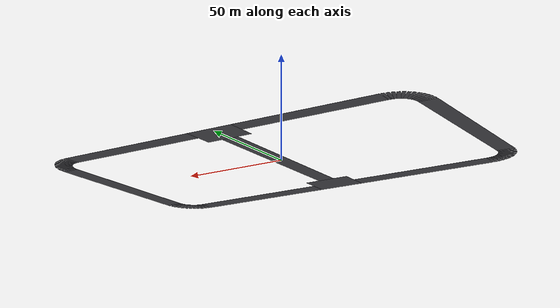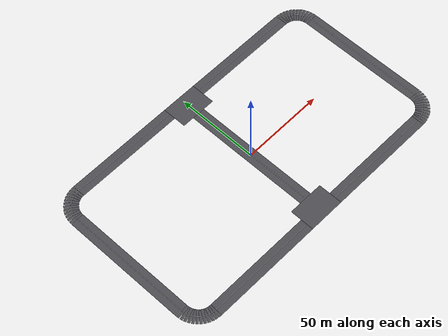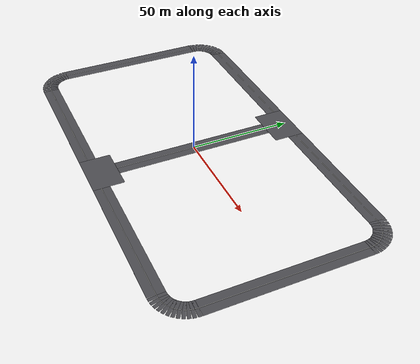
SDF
<?xml version="1.0" ?>
<sdf version="1.9">
  <model name="campus_road">
    <static>true</static>
    <link name="link">
      <visual name="surface_0">
        <pose>44.500000 -50.000000 0.005000 0 0 0.000000</pose>
        <geometry><box><size>67.000000 8.000000 0.010000</size></box></geometry>
        <material><ambient>0.22 0.22 0.24 1</ambient><diffuse>0.28 0.28 0.30 1</diffuse></material>
      </visual>
      <visual name="centerline_0">
        <pose>44.500000 -50.000000 0.006000 0 0 0.000000</pose>
        <geometry><box><size>67.000000 0.150000 0.010000</size></box></geometry>
        <material><ambient>0.85 0.85 0.80 1</ambient><diffuse>0.95 0.95 0.90 1</diffuse></material>
      </visual>
      <visual name="surface_1">
        <pose>78.783157 -49.948669 0.005000 0 0 0.065450</pose>
        <geometry><box><size>1.569675 8.000000 0.010000</size></box></geometry>
        <material><ambient>0.22 0.22 0.24 1</ambient><diffuse>0.28 0.28 0.30 1</diffuse></material>
      </visual>
      <visual name="centerline_1">
        <pose>78.783157 -49.948669 0.006000 0 0 0.065450</pose>
        <geometry><box><size>1.569675 0.150000 0.010000</size></box></geometry>
        <material><ambient>0.85 0.85 0.80 1</ambient><diffuse>0.95 0.95 0.90 1</diffuse></material>
      </visual>
      <visual name="surface_2">
        <pose>80.336071 -49.744224 0.005000 0 0 0.196350</pose>
        <geometry><box><size>1.569675 8.000000 0.010000</size></box></geometry>
        <material><ambient>0.22 0.22 0.24 1</ambient><diffuse>0.28 0.28 0.30 1</diffuse></material>
      </visual>
      <visual name="centerline_2">
        <pose>80.336071 -49.744224 0.006000 0 0 0.196350</pose>
        <geometry><box><size>1.569675 0.150000 0.010000</size></box></geometry>
        <material><ambient>0.85 0.85 0.80 1</ambient><diffuse>0.95 0.95 0.90 1</diffuse></material>
      </visual>
      <visual name="surface_3">
        <pose>81.849015 -49.338832 0.005000 0 0 0.327249</pose>
        <geometry><box><size>1.569675 8.000000 0.010000</size></box></geometry>
        <material><ambient>0.22 0.22 0.24 1</ambient><diffuse>0.28 0.28 0.30 1</diffuse></material>
      </visual>
      <visual name="centerline_3">
        <pose>81.849015 -49.338832 0.006000 0 0 0.327249</pose>
        <geometry><box><size>1.569675 0.150000 0.010000</size></box></geometry>
        <material><ambient>0.85 0.85 0.80 1</ambient><diffuse>0.95 0.95 0.90 1</diffuse></material>
      </visual>
      <visual name="surface_4">
        <pose>83.296101 -48.739430 0.005000 0 0 0.458149</pose>
        <geometry><box><size>1.569675 8.000000 0.010000</size></box></geometry>
        <material><ambient>0.22 0.22 0.24 1</ambient><diffuse>0.28 0.28 0.30 1</diffuse></material>
      </visual>
      <visual name="centerline_4">
        <pose>83.296101 -48.739430 0.006000 0 0 0.458149</pose>
        <geometry><box><size>1.569675 0.150000 0.010000</size></box></geometry>
        <material><ambient>0.85 0.85 0.80 1</ambient><diffuse>0.95 0.95 0.90 1</diffuse></material>
      </visual>
      <visual name="surface_5">
        <pose>84.652569 -47.956272 0.005000 0 0 0.589049</pose>
        <geometry><box><size>1.569675 8.000000 0.010000</size></box></geometry>
        <material><ambient>0.22 0.22 0.24 1</ambient><diffuse>0.28 0.28 0.30 1</diffuse></material>
      </visual>
      <visual name="centerline_5">
        <pose>84.652569 -47.956272 0.006000 0 0 0.589049</pose>
        <geometry><box><size>1.569675 0.150000 0.010000</size></box></geometry>
        <material><ambient>0.85 0.85 0.80 1</ambient><diffuse>0.95 0.95 0.90 1</diffuse></material>
      </visual>
      <visual name="surface_6">
        <pose>85.895209 -47.002761 0.005000 0 0 0.719948</pose>
        <geometry><box><size>1.569675 8.000000 0.010000</size></box></geometry>
        <material><ambient>0.22 0.22 0.24 1</ambient><diffuse>0.28 0.28 0.30 1</diffuse></material>
      </visual>
      <visual name="centerline_6">
        <pose>85.895209 -47.002761 0.006000 0 0 0.719948</pose>
        <geometry><box><size>1.569675 0.150000 0.010000</size></box></geometry>
        <material><ambient>0.85 0.85 0.80 1</ambient><diffuse>0.95 0.95 0.90 1</diffuse></material>
      </visual>
      <visual name="surface_7">
        <pose>87.002761 -45.895209 0.005000 0 0 0.850848</pose>
        <geometry><box><size>1.569675 8.000000 0.010000</size></box></geometry>
        <material><ambient>0.22 0.22 0.24 1</ambient><diffuse>0.28 0.28 0.30 1</diffuse></material>
      </visual>
      <visual name="centerline_7">
        <pose>87.002761 -45.895209 0.006000 0 0 0.850848</pose>
        <geometry><box><size>1.569675 0.150000 0.010000</size></box></geometry>
        <material><ambient>0.85 0.85 0.80 1</ambient><diffuse>0.95 0.95 0.90 1</diffuse></material>
      </visual>
      <visual name="surface_8">
        <pose>87.956272 -44.652569 0.005000 0 0 0.981748</pose>
        <geometry><box><size>1.569675 8.000000 0.010000</size></box></geometry>
        <material><ambient>0.22 0.22 0.24 1</ambient><diffuse>0.28 0.28 0.30 1</diffuse></material>
      </visual>
      <visual name="centerline_8">
        <pose>87.956272 -44.652569 0.006000 0 0 0.981748</pose>
        <geometry><box><size>1.569675 0.150000 0.010000</size></box></geometry>
        <material><ambient>0.85 0.85 0.80 1</ambient><diffuse>0.95 0.95 0.90 1</diffuse></material>
      </visual>
      <visual name="surface_9">
        <pose>88.739430 -43.296101 0.005000 0 0 1.112647</pose>
        <geometry><box><size>1.569675 8.000000 0.010000</size></box></geometry>
        <material><ambient>0.22 0.22 0.24 1</ambient><diffuse>0.28 0.28 0.30 1</diffuse></material>
      </visual>
      <visual name="centerline_9">
        <pose>88.739430 -43.296101 0.006000 0 0 1.112647</pose>
        <geometry><box><size>1.569675 0.150000 0.010000</size></box></geometry>
        <material><ambient>0.85 0.85 0.80 1</ambient><diffuse>0.95 0.95 0.90 1</diffuse></material>
      </visual>
      <visual name="surface_10">
        <pose>89.338832 -41.849015 0.005000 0 0 1.243547</pose>
        <geometry><box><size>1.569675 8.000000 0.010000</size></box></geometry>
        <material><ambient>0.22 0.22 0.24 1</ambient><diffuse>0.28 0.28 0.30 1</diffuse></material>
      </visual>
      <visual name="centerline_10">
        <pose>89.338832 -41.849015 0.006000 0 0 1.243547</pose>
        <geometry><box><size>1.569675 0.150000 0.010000</size></box></geometry>
        <material><ambient>0.85 0.85 0.80 1</ambient><diffuse>0.95 0.95 0.90 1</diffuse></material>
      </visual>
      <visual name="surface_11">
        <pose>89.744224 -40.336071 0.005000 0 0 1.374447</pose>
        <geometry><box><size>1.569675 8.000000 0.010000</size></box></geometry>
        <material><ambient>0.22 0.22 0.24 1</ambient><diffuse>0.28 0.28 0.30 1</diffuse></material>
      </visual>
      <visual name="centerline_11">
        <pose>89.744224 -40.336071 0.006000 0 0 1.374447</pose>
        <geometry><box><size>1.569675 0.150000 0.010000</size></box></geometry>
        <material><ambient>0.85 0.85 0.80 1</ambient><diffuse>0.95 0.95 0.90 1</diffuse></material>
      </visual>
      <visual name="surface_12">
        <pose>89.948669 -38.783157 0.005000 0 0 1.505346</pose>
        <geometry><box><size>1.569675 8.000000 0.010000</size></box></geometry>
        <material><ambient>0.22 0.22 0.24 1</ambient><diffuse>0.28 0.28 0.30 1</diffuse></material>
      </visual>
      <visual name="centerline_12">
        <pose>89.948669 -38.783157 0.006000 0 0 1.505346</pose>
        <geometry><box><size>1.569675 0.150000 0.010000</size></box></geometry>
        <material><ambient>0.85 0.85 0.80 1</ambient><diffuse>0.95 0.95 0.90 1</diffuse></material>
      </visual>
      <visual name="surface_13">
        <pose>90.000000 0.000000 0.005000 0 0 1.570796</pose>
        <geometry><box><size>76.000000 8.000000 0.010000</size></box></geometry>
        <material><ambient>0.22 0.22 0.24 1</ambient><diffuse>0.28 0.28 0.30 1</diffuse></material>
      </visual>
      <visual name="centerline_13">
        <pose>90.000000 0.000000 0.006000 0 0 1.570796</pose>
        <geometry><box><size>76.000000 0.150000 0.010000</size></box></geometry>
        <material><ambient>0.85 0.85 0.80 1</ambient><diffuse>0.95 0.95 0.90 1</diffuse></material>
      </visual>
      <visual name="surface_14">
        <pose>89.948669 38.783157 0.005000 0 0 1.636246</pose>
        <geometry><box><size>1.569675 8.000000 0.010000</size></box></geometry>
        <material><ambient>0.22 0.22 0.24 1</ambient><diffuse>0.28 0.28 0.30 1</diffuse></material>
      </visual>
      <visual name="centerline_14">
        <pose>89.948669 38.783157 0.006000 0 0 1.636246</pose>
        <geometry><box><size>1.569675 0.150000 0.010000</size></box></geometry>
        <material><ambient>0.85 0.85 0.80 1</ambient><diffuse>0.95 0.95 0.90 1</diffuse></material>
      </visual>
      <visual name="surface_15">
        <pose>89.744224 40.336071 0.005000 0 0 1.767146</pose>
        <geometry><box><size>1.569675 8.000000 0.010000</size></box></geometry>
        <material><ambient>0.22 0.22 0.24 1</ambient><diffuse>0.28 0.28 0.30 1</diffuse></material>
      </visual>
      <visual name="centerline_15">
        <pose>89.744224 40.336071 0.006000 0 0 1.767146</pose>
        <geometry><box><size>1.569675 0.150000 0.010000</size></box></geometry>
        <material><ambient>0.85 0.85 0.80 1</ambient><diffuse>0.95 0.95 0.90 1</diffuse></material>
      </visual>
      <visual name="surface_16">
        <pose>89.338832 41.849015 0.005000 0 0 1.898046</pose>
        <geometry><box><size>1.569675 8.000000 0.010000</size></box></geometry>
        <material><ambient>0.22 0.22 0.24 1</ambient><diffuse>0.28 0.28 0.30 1</diffuse></material>
      </visual>
      <visual name="centerline_16">
        <pose>89.338832 41.849015 0.006000 0 0 1.898046</pose>
        <geometry><box><size>1.569675 0.150000 0.010000</size></box></geometry>
        <material><ambient>0.85 0.85 0.80 1</ambient><diffuse>0.95 0.95 0.90 1</diffuse></material>
      </visual>
      <visual name="surface_17">
        <pose>88.739430 43.296101 0.005000 0 0 2.028945</pose>
        <geometry><box><size>1.569675 8.000000 0.010000</size></box></geometry>
        <material><ambient>0.22 0.22 0.24 1</ambient><diffuse>0.28 0.28 0.30 1</diffuse></material>
      </visual>
      <visual name="centerline_17">
        <pose>88.739430 43.296101 0.006000 0 0 2.028945</pose>
        <geometry><box><size>1.569675 0.150000 0.010000</size></box></geometry>
        <material><ambient>0.85 0.85 0.80 1</ambient><diffuse>0.95 0.95 0.90 1</diffuse></material>
      </visual>
      <visual name="surface_18">
        <pose>87.956272 44.652569 0.005000 0 0 2.159845</pose>
        <geometry><box><size>1.569675 8.000000 0.010000</size></box></geometry>
        <material><ambient>0.22 0.22 0.24 1</ambient><diffuse>0.28 0.28 0.30 1</diffuse></material>
      </visual>
      <visual name="centerline_18">
        <pose>87.956272 44.652569 0.006000 0 0 2.159845</pose>
        <geometry><box><size>1.569675 0.150000 0.010000</size></box></geometry>
        <material><ambient>0.85 0.85 0.80 1</ambient><diffuse>0.95 0.95 0.90 1</diffuse></material>
      </visual>
      <visual name="surface_19">
        <pose>87.002761 45.895209 0.005000 0 0 2.290745</pose>
        <geometry><box><size>1.569675 8.000000 0.010000</size></box></geometry>
        <material><ambient>0.22 0.22 0.24 1</ambient><diffuse>0.28 0.28 0.30 1</diffuse></material>
      </visual>
      <visual name="centerline_19">
        <pose>87.002761 45.895209 0.006000 0 0 2.290745</pose>
        <geometry><box><size>1.569675 0.150000 0.010000</size></box></geometry>
        <material><ambient>0.85 0.85 0.80 1</ambient><diffuse>0.95 0.95 0.90 1</diffuse></material>
      </visual>
      <visual name="surface_20">
        <pose>85.895209 47.002761 0.005000 0 0 2.421644</pose>
        <geometry><box><size>1.569675 8.000000 0.010000</size></box></geometry>
        <material><ambient>0.22 0.22 0.24 1</ambient><diffuse>0.28 0.28 0.30 1</diffuse></material>
      </visual>
      <visual name="centerline_20">
        <pose>85.895209 47.002761 0.006000 0 0 2.421644</pose>
        <geometry><box><size>1.569675 0.150000 0.010000</size></box></geometry>
        <material><ambient>0.85 0.85 0.80 1</ambient><diffuse>0.95 0.95 0.90 1</diffuse></material>
      </visual>
      <visual name="surface_21">
        <pose>84.652569 47.956272 0.005000 0 0 2.552544</pose>
        <geometry><box><size>1.569675 8.000000 0.010000</size></box></geometry>
        <material><ambient>0.22 0.22 0.24 1</ambient><diffuse>0.28 0.28 0.30 1</diffuse></material>
      </visual>
      <visual name="centerline_21">
        <pose>84.652569 47.956272 0.006000 0 0 2.552544</pose>
        <geometry><box><size>1.569675 0.150000 0.010000</size></box></geometry>
        <material><ambient>0.85 0.85 0.80 1</ambient><diffuse>0.95 0.95 0.90 1</diffuse></material>
      </visual>
      <visual name="surface_22">
        <pose>83.296101 48.739430 0.005000 0 0 2.683444</pose>
        <geometry><box><size>1.569675 8.000000 0.010000</size></box></geometry>
        <material><ambient>0.22 0.22 0.24 1</ambient><diffuse>0.28 0.28 0.30 1</diffuse></material>
      </visual>
      <visual name="centerline_22">
        <pose>83.296101 48.739430 0.006000 0 0 2.683444</pose>
        <geometry><box><size>1.569675 0.150000 0.010000</size></box></geometry>
        <material><ambient>0.85 0.85 0.80 1</ambient><diffuse>0.95 0.95 0.90 1</diffuse></material>
      </visual>
      <visual name="surface_23">
        <pose>81.849015 49.338832 0.005000 0 0 2.814343</pose>
        <geometry><box><size>1.569675 8.000000 0.010000</size></box></geometry>
        <material><ambient>0.22 0.22 0.24 1</ambient><diffuse>0.28 0.28 0.30 1</diffuse></material>
      </visual>
      <visual name="centerline_23">
        <pose>81.849015 49.338832 0.006000 0 0 2.814343</pose>
        <geometry><box><size>1.569675 0.150000 0.010000</size></box></geometry>
        <material><ambient>0.85 0.85 0.80 1</ambient><diffuse>0.95 0.95 0.90 1</diffuse></material>
      </visual>
      <visual name="surface_24">
        <pose>80.336071 49.744224 0.005000 0 0 2.945243</pose>
        <geometry><box><size>1.569675 8.000000 0.010000</size></box></geometry>
        <material><ambient>0.22 0.22 0.24 1</ambient><diffuse>0.28 0.28 0.30 1</diffuse></material>
      </visual>
      <visual name="centerline_24">
        <pose>80.336071 49.744224 0.006000 0 0 2.945243</pose>
        <geometry><box><size>1.569675 0.150000 0.010000</size></box></geometry>
        <material><ambient>0.85 0.85 0.80 1</ambient><diffuse>0.95 0.95 0.90 1</diffuse></material>
      </visual>
      <visual name="surface_25">
        <pose>78.783157 49.948669 0.005000 0 0 3.076143</pose>
        <geometry><box><size>1.569675 8.000000 0.010000</size></box></geometry>
        <material><ambient>0.22 0.22 0.24 1</ambient><diffuse>0.28 0.28 0.30 1</diffuse></material>
      </visual>
      <visual name="centerline_25">
        <pose>78.783157 49.948669 0.006000 0 0 3.076143</pose>
        <geometry><box><size>1.569675 0.150000 0.010000</size></box></geometry>
        <material><ambient>0.85 0.85 0.80 1</ambient><diffuse>0.95 0.95 0.90 1</diffuse></material>
      </visual>
      <visual name="surface_26">
        <pose>44.500000 50.000000 0.005000 0 0 3.141593</pose>
        <geometry><box><size>67.000000 8.000000 0.010000</size></box></geometry>
        <material><ambient>0.22 0.22 0.24 1</ambient><diffuse>0.28 0.28 0.30 1</diffuse></material>
      </visual>
      <visual name="centerline_26">
        <pose>44.500000 50.000000 0.006000 0 0 3.141593</pose>
        <geometry><box><size>67.000000 0.150000 0.010000</size></box></geometry>
        <material><ambient>0.85 0.85 0.80 1</ambient><diffuse>0.95 0.95 0.90 1</diffuse></material>
      </visual>
      <visual name="surface_27">
        <pose>-44.500000 50.000000 0.005000 0 0 3.141593</pose>
        <geometry><box><size>67.000000 8.000000 0.010000</size></box></geometry>
        <material><ambient>0.22 0.22 0.24 1</ambient><diffuse>0.28 0.28 0.30 1</diffuse></material>
      </visual>
      <visual name="centerline_27">
        <pose>-44.500000 50.000000 0.006000 0 0 3.141593</pose>
        <geometry><box><size>67.000000 0.150000 0.010000</size></box></geometry>
        <material><ambient>0.85 0.85 0.80 1</ambient><diffuse>0.95 0.95 0.90 1</diffuse></material>
      </visual>
      <visual name="surface_28">
        <pose>-78.783157 49.948669 0.005000 0 0 -3.076143</pose>
        <geometry><box><size>1.569675 8.000000 0.010000</size></box></geometry>
        <material><ambient>0.22 0.22 0.24 1</ambient><diffuse>0.28 0.28 0.30 1</diffuse></material>
      </visual>
      <visual name="centerline_28">
        <pose>-78.783157 49.948669 0.006000 0 0 -3.076143</pose>
        <geometry><box><size>1.569675 0.150000 0.010000</size></box></geometry>
        <material><ambient>0.85 0.85 0.80 1</ambient><diffuse>0.95 0.95 0.90 1</diffuse></material>
      </visual>
      <visual name="surface_29">
        <pose>-80.336071 49.744224 0.005000 0 0 -2.945243</pose>
        <geometry><box><size>1.569675 8.000000 0.010000</size></box></geometry>
        <material><ambient>0.22 0.22 0.24 1</ambient><diffuse>0.28 0.28 0.30 1</diffuse></material>
      </visual>
      <visual name="centerline_29">
        <pose>-80.336071 49.744224 0.006000 0 0 -2.945243</pose>
        <geometry><box><size>1.569675 0.150000 0.010000</size></box></geometry>
        <material><ambient>0.85 0.85 0.80 1</ambient><diffuse>0.95 0.95 0.90 1</diffuse></material>
      </visual>
      <visual name="surface_30">
        <pose>-81.849015 49.338832 0.005000 0 0 -2.814343</pose>
        <geometry><box><size>1.569675 8.000000 0.010000</size></box></geometry>
        <material><ambient>0.22 0.22 0.24 1</ambient><diffuse>0.28 0.28 0.30 1</diffuse></material>
      </visual>
      <visual name="centerline_30">
        <pose>-81.849015 49.338832 0.006000 0 0 -2.814343</pose>
        <geometry><box><size>1.569675 0.150000 0.010000</size></box></geometry>
        <material><ambient>0.85 0.85 0.80 1</ambient><diffuse>0.95 0.95 0.90 1</diffuse></material>
      </visual>
      <visual name="surface_31">
        <pose>-83.296101 48.739430 0.005000 0 0 -2.683444</pose>
        <geometry><box><size>1.569675 8.000000 0.010000</size></box></geometry>
        <material><ambient>0.22 0.22 0.24 1</ambient><diffuse>0.28 0.28 0.30 1</diffuse></material>
      </visual>
      <visual name="centerline_31">
        <pose>-83.296101 48.739430 0.006000 0 0 -2.683444</pose>
        <geometry><box><size>1.569675 0.150000 0.010000</size></box></geometry>
        <material><ambient>0.85 0.85 0.80 1</ambient><diffuse>0.95 0.95 0.90 1</diffuse></material>
      </visual>
      <visual name="surface_32">
        <pose>-84.652569 47.956272 0.005000 0 0 -2.552544</pose>
        <geometry><box><size>1.569675 8.000000 0.010000</size></box></geometry>
        <material><ambient>0.22 0.22 0.24 1</ambient><diffuse>0.28 0.28 0.30 1</diffuse></material>
      </visual>
      <visual name="centerline_32">
        <pose>-84.652569 47.956272 0.006000 0 0 -2.552544</pose>
        <geometry><box><size>1.569675 0.150000 0.010000</size></box></geometry>
        <material><ambient>0.85 0.85 0.80 1</ambient><diffuse>0.95 0.95 0.90 1</diffuse></material>
      </visual>
      <visual name="surface_33">
        <pose>-85.895209 47.002761 0.005000 0 0 -2.421644</pose>
        <geometry><box><size>1.569675 8.000000 0.010000</size></box></geometry>
        <material><ambient>0.22 0.22 0.24 1</ambient><diffuse>0.28 0.28 0.30 1</diffuse></material>
      </visual>
      <visual name="centerline_33">
        <pose>-85.895209 47.002761 0.006000 0 0 -2.421644</pose>
        <geometry><box><size>1.569675 0.150000 0.010000</size></box></geometry>
        <material><ambient>0.85 0.85 0.80 1</ambient><diffuse>0.95 0.95 0.90 1</diffuse></material>
      </visual>
      <visual name="surface_34">
        <pose>-87.002761 45.895209 0.005000 0 0 -2.290745</pose>
        <geometry><box><size>1.569675 8.000000 0.010000</size></box></geometry>
        <material><ambient>0.22 0.22 0.24 1</ambient><diffuse>0.28 0.28 0.30 1</diffuse></material>
      </visual>
      <visual name="centerline_34">
        <pose>-87.002761 45.895209 0.006000 0 0 -2.290745</pose>
        <geometry><box><size>1.569675 0.150000 0.010000</size></box></geometry>
        <material><ambient>0.85 0.85 0.80 1</ambient><diffuse>0.95 0.95 0.90 1</diffuse></material>
      </visual>
      <visual name="surface_35">
        <pose>-87.956272 44.652569 0.005000 0 0 -2.159845</pose>
        <geometry><box><size>1.569675 8.000000 0.010000</size></box></geometry>
        <material><ambient>0.22 0.22 0.24 1</ambient><diffuse>0.28 0.28 0.30 1</diffuse></material>
      </visual>
      <visual name="centerline_35">
        <pose>-87.956272 44.652569 0.006000 0 0 -2.159845</pose>
        <geometry><box><size>1.569675 0.150000 0.010000</size></box></geometry>
        <material><ambient>0.85 0.85 0.80 1</ambient><diffuse>0.95 0.95 0.90 1</diffuse></material>
      </visual>
      <visual name="surface_36">
        <pose>-88.739430 43.296101 0.005000 0 0 -2.028945</pose>
        <geometry><box><size>1.569675 8.000000 0.010000</size></box></geometry>
        <material><ambient>0.22 0.22 0.24 1</ambient><diffuse>0.28 0.28 0.30 1</diffuse></material>
      </visual>
      <visual name="centerline_36">
        <pose>-88.739430 43.296101 0.006000 0 0 -2.028945</pose>
        <geometry><box><size>1.569675 0.150000 0.010000</size></box></geometry>
        <material><ambient>0.85 0.85 0.80 1</ambient><diffuse>0.95 0.95 0.90 1</diffuse></material>
      </visual>
      <visual name="surface_37">
        <pose>-89.338832 41.849015 0.005000 0 0 -1.898046</pose>
        <geometry><box><size>1.569675 8.000000 0.010000</size></box></geometry>
        <material><ambient>0.22 0.22 0.24 1</ambient><diffuse>0.28 0.28 0.30 1</diffuse></material>
      </visual>
      <visual name="centerline_37">
        <pose>-89.338832 41.849015 0.006000 0 0 -1.898046</pose>
        <geometry><box><size>1.569675 0.150000 0.010000</size></box></geometry>
        <material><ambient>0.85 0.85 0.80 1</ambient><diffuse>0.95 0.95 0.90 1</diffuse></material>
      </visual>
      <visual name="surface_38">
        <pose>-89.744224 40.336071 0.005000 0 0 -1.767146</pose>
        <geometry><box><size>1.569675 8.000000 0.010000</size></box></geometry>
        <material><ambient>0.22 0.22 0.24 1</ambient><diffuse>0.28 0.28 0.30 1</diffuse></material>
      </visual>
      <visual name="centerline_38">
        <pose>-89.744224 40.336071 0.006000 0 0 -1.767146</pose>
        <geometry><box><size>1.569675 0.150000 0.010000</size></box></geometry>
        <material><ambient>0.85 0.85 0.80 1</ambient><diffuse>0.95 0.95 0.90 1</diffuse></material>
      </visual>
      <visual name="surface_39">
        <pose>-89.948669 38.783157 0.005000 0 0 -1.636246</pose>
        <geometry><box><size>1.569675 8.000000 0.010000</size></box></geometry>
        <material><ambient>0.22 0.22 0.24 1</ambient><diffuse>0.28 0.28 0.30 1</diffuse></material>
      </visual>
      <visual name="centerline_39">
        <pose>-89.948669 38.783157 0.006000 0 0 -1.636246</pose>
        <geometry><box><size>1.569675 0.150000 0.010000</size></box></geometry>
        <material><ambient>0.85 0.85 0.80 1</ambient><diffuse>0.95 0.95 0.90 1</diffuse></material>
      </visual>
      <visual name="surface_40">
        <pose>-90.000000 0.000000 0.005000 0 0 -1.570796</pose>
        <geometry><box><size>76.000000 8.000000 0.010000</size></box></geometry>
        <material><ambient>0.22 0.22 0.24 1</ambient><diffuse>0.28 0.28 0.30 1</diffuse></material>
      </visual>
      <visual name="centerline_40">
        <pose>-90.000000 0.000000 0.006000 0 0 -1.570796</pose>
        <geometry><box><size>76.000000 0.150000 0.010000</size></box></geometry>
        <material><ambient>0.85 0.85 0.80 1</ambient><diffuse>0.95 0.95 0.90 1</diffuse></material>
      </visual>
      <visual name="surface_41">
        <pose>-89.948669 -38.783157 0.005000 0 0 -1.505346</pose>
        <geometry><box><size>1.569675 8.000000 0.010000</size></box></geometry>
        <material><ambient>0.22 0.22 0.24 1</ambient><diffuse>0.28 0.28 0.30 1</diffuse></material>
      </visual>
      <visual name="centerline_41">
        <pose>-89.948669 -38.783157 0.006000 0 0 -1.505346</pose>
        <geometry><box><size>1.569675 0.150000 0.010000</size></box></geometry>
        <material><ambient>0.85 0.85 0.80 1</ambient><diffuse>0.95 0.95 0.90 1</diffuse></material>
      </visual>
      <visual name="surface_42">
        <pose>-89.744224 -40.336071 0.005000 0 0 -1.374447</pose>
        <geometry><box><size>1.569675 8.000000 0.010000</size></box></geometry>
        <material><ambient>0.22 0.22 0.24 1</ambient><diffuse>0.28 0.28 0.30 1</diffuse></material>
      </visual>
      <visual name="centerline_42">
        <pose>-89.744224 -40.336071 0.006000 0 0 -1.374447</pose>
        <geometry><box><size>1.569675 0.150000 0.010000</size></box></geometry>
        <material><ambient>0.85 0.85 0.80 1</ambient><diffuse>0.95 0.95 0.90 1</diffuse></material>
      </visual>
      <visual name="surface_43">
        <pose>-89.338832 -41.849015 0.005000 0 0 -1.243547</pose>
        <geometry><box><size>1.569675 8.000000 0.010000</size></box></geometry>
        <material><ambient>0.22 0.22 0.24 1</ambient><diffuse>0.28 0.28 0.30 1</diffuse></material>
      </visual>
      <visual name="centerline_43">
        <pose>-89.338832 -41.849015 0.006000 0 0 -1.243547</pose>
        <geometry><box><size>1.569675 0.150000 0.010000</size></box></geometry>
        <material><ambient>0.85 0.85 0.80 1</ambient><diffuse>0.95 0.95 0.90 1</diffuse></material>
      </visual>
      <visual name="surface_44">
        <pose>-88.739430 -43.296101 0.005000 0 0 -1.112647</pose>
        <geometry><box><size>1.569675 8.000000 0.010000</size></box></geometry>
        <material><ambient>0.22 0.22 0.24 1</ambient><diffuse>0.28 0.28 0.30 1</diffuse></material>
      </visual>
      <visual name="centerline_44">
        <pose>-88.739430 -43.296101 0.006000 0 0 -1.112647</pose>
        <geometry><box><size>1.569675 0.150000 0.010000</size></box></geometry>
        <material><ambient>0.85 0.85 0.80 1</ambient><diffuse>0.95 0.95 0.90 1</diffuse></material>
      </visual>
      <visual name="surface_45">
        <pose>-87.956272 -44.652569 0.005000 0 0 -0.981748</pose>
        <geometry><box><size>1.569675 8.000000 0.010000</size></box></geometry>
        <material><ambient>0.22 0.22 0.24 1</ambient><diffuse>0.28 0.28 0.30 1</diffuse></material>
      </visual>
      <visual name="centerline_45">
        <pose>-87.956272 -44.652569 0.006000 0 0 -0.981748</pose>
        <geometry><box><size>1.569675 0.150000 0.010000</size></box></geometry>
        <material><ambient>0.85 0.85 0.80 1</ambient><diffuse>0.95 0.95 0.90 1</diffuse></material>
      </visual>
      <visual name="surface_46">
        <pose>-87.002761 -45.895209 0.005000 0 0 -0.850848</pose>
        <geometry><box><size>1.569675 8.000000 0.010000</size></box></geometry>
        <material><ambient>0.22 0.22 0.24 1</ambient><diffuse>0.28 0.28 0.30 1</diffuse></material>
      </visual>
      <visual name="centerline_46">
        <pose>-87.002761 -45.895209 0.006000 0 0 -0.850848</pose>
        <geometry><box><size>1.569675 0.150000 0.010000</size></box></geometry>
        <material><ambient>0.85 0.85 0.80 1</ambient><diffuse>0.95 0.95 0.90 1</diffuse></material>
      </visual>
      <visual name="surface_47">
        <pose>-85.895209 -47.002761 0.005000 0 0 -0.719948</pose>
        <geometry><box><size>1.569675 8.000000 0.010000</size></box></geometry>
        <material><ambient>0.22 0.22 0.24 1</ambient><diffuse>0.28 0.28 0.30 1</diffuse></material>
      </visual>
      <visual name="centerline_47">
        <pose>-85.895209 -47.002761 0.006000 0 0 -0.719948</pose>
        <geometry><box><size>1.569675 0.150000 0.010000</size></box></geometry>
        <material><ambient>0.85 0.85 0.80 1</ambient><diffuse>0.95 0.95 0.90 1</diffuse></material>
      </visual>
      <visual name="surface_48">
        <pose>-84.652569 -47.956272 0.005000 0 0 -0.589049</pose>
        <geometry><box><size>1.569675 8.000000 0.010000</size></box></geometry>
        <material><ambient>0.22 0.22 0.24 1</ambient><diffuse>0.28 0.28 0.30 1</diffuse></material>
      </visual>
      <visual name="centerline_48">
        <pose>-84.652569 -47.956272 0.006000 0 0 -0.589049</pose>
        <geometry><box><size>1.569675 0.150000 0.010000</size></box></geometry>
        <material><ambient>0.85 0.85 0.80 1</ambient><diffuse>0.95 0.95 0.90 1</diffuse></material>
      </visual>
      <visual name="surface_49">
        <pose>-83.296101 -48.739430 0.005000 0 0 -0.458149</pose>
        <geometry><box><size>1.569675 8.000000 0.010000</size></box></geometry>
        <material><ambient>0.22 0.22 0.24 1</ambient><diffuse>0.28 0.28 0.30 1</diffuse></material>
      </visual>
      <visual name="centerline_49">
        <pose>-83.296101 -48.739430 0.006000 0 0 -0.458149</pose>
        <geometry><box><size>1.569675 0.150000 0.010000</size></box></geometry>
        <material><ambient>0.85 0.85 0.80 1</ambient><diffuse>0.95 0.95 0.90 1</diffuse></material>
      </visual>
      <visual name="surface_50">
        <pose>-81.849015 -49.338832 0.005000 0 0 -0.327249</pose>
        <geometry><box><size>1.569675 8.000000 0.010000</size></box></geometry>
        <material><ambient>0.22 0.22 0.24 1</ambient><diffuse>0.28 0.28 0.30 1</diffuse></material>
      </visual>
      <visual name="centerline_50">
        <pose>-81.849015 -49.338832 0.006000 0 0 -0.327249</pose>
        <geometry><box><size>1.569675 0.150000 0.010000</size></box></geometry>
        <material><ambient>0.85 0.85 0.80 1</ambient><diffuse>0.95 0.95 0.90 1</diffuse></material>
      </visual>
      <visual name="surface_51">
        <pose>-80.336071 -49.744224 0.005000 0 0 -0.196350</pose>
        <geometry><box><size>1.569675 8.000000 0.010000</size></box></geometry>
        <material><ambient>0.22 0.22 0.24 1</ambient><diffuse>0.28 0.28 0.30 1</diffuse></material>
      </visual>
      <visual name="centerline_51">
        <pose>-80.336071 -49.744224 0.006000 0 0 -0.196350</pose>
        <geometry><box><size>1.569675 0.150000 0.010000</size></box></geometry>
        <material><ambient>0.85 0.85 0.80 1</ambient><diffuse>0.95 0.95 0.90 1</diffuse></material>
      </visual>
      <visual name="surface_52">
        <pose>-78.783157 -49.948669 0.005000 0 0 -0.065450</pose>
        <geometry><box><size>1.569675 8.000000 0.010000</size></box></geometry>
        <material><ambient>0.22 0.22 0.24 1</ambient><diffuse>0.28 0.28 0.30 1</diffuse></material>
      </visual>
      <visual name="centerline_52">
        <pose>-78.783157 -49.948669 0.006000 0 0 -0.065450</pose>
        <geometry><box><size>1.569675 0.150000 0.010000</size></box></geometry>
        <material><ambient>0.85 0.85 0.80 1</ambient><diffuse>0.95 0.95 0.90 1</diffuse></material>
      </visual>
      <visual name="surface_53">
        <pose>-44.500000 -50.000000 0.005000 0 0 0.000000</pose>
        <geometry><box><size>67.000000 8.000000 0.010000</size></box></geometry>
        <material><ambient>0.22 0.22 0.24 1</ambient><diffuse>0.28 0.28 0.30 1</diffuse></material>
      </visual>
      <visual name="centerline_53">
        <pose>-44.500000 -50.000000 0.006000 0 0 0.000000</pose>
        <geometry><box><size>67.000000 0.150000 0.010000</size></box></geometry>
        <material><ambient>0.85 0.85 0.80 1</ambient><diffuse>0.95 0.95 0.90 1</diffuse></material>
      </visual>
      <visual name="surface_54">
        <pose>0.000000 0.000000 0.005000 0 0 1.570796</pose>
        <geometry><box><size>78.000000 8.000000 0.010000</size></box></geometry>
        <material><ambient>0.22 0.22 0.24 1</ambient><diffuse>0.28 0.28 0.30 1</diffuse></material>
      </visual>
      <visual name="centerline_54">
        <pose>0.000000 0.000000 0.006000 0 0 1.570796</pose>
        <geometry><box><size>78.000000 0.150000 0.010000</size></box></geometry>
        <material><ambient>0.85 0.85 0.80 1</ambient><diffuse>0.95 0.95 0.90 1</diffuse></material>
      </visual>
      <visual name="junction_100">
        <pose>0.000000 -46.500000 0.005000 0 0 0.000000</pose>
        <geometry><box><size>22.000000 15.000000 0.010000</size></box></geometry>
        <material><ambient>0.22 0.22 0.24 1</ambient><diffuse>0.28 0.28 0.30 1</diffuse></material>
      </visual>
      <visual name="junction_101">
        <pose>0.000000 46.500000 0.005000 0 0 0.000000</pose>
        <geometry><box><size>22.000000 15.000000 0.010000</size></box></geometry>
        <material><ambient>0.22 0.22 0.24 1</ambient><diffuse>0.28 0.28 0.30 1</diffuse></material>
      </visual>
    </link>
  </model>
</sdf>
